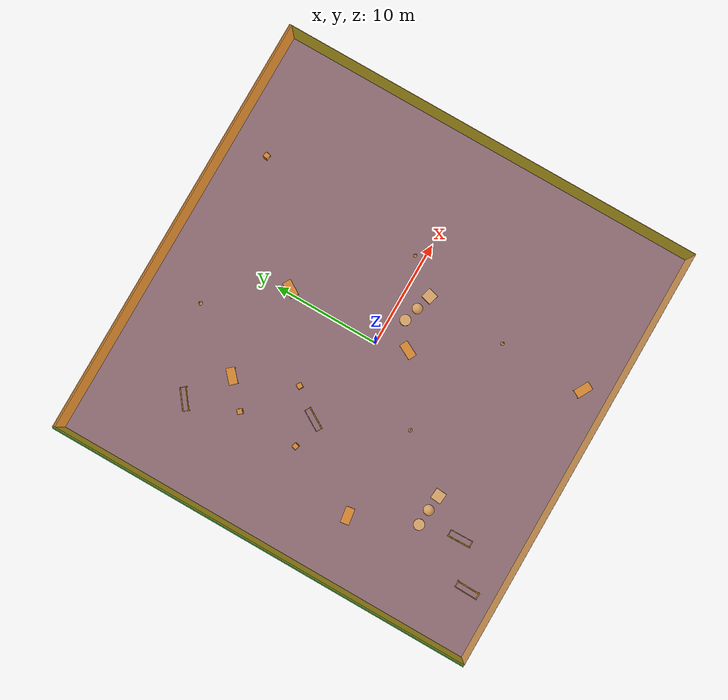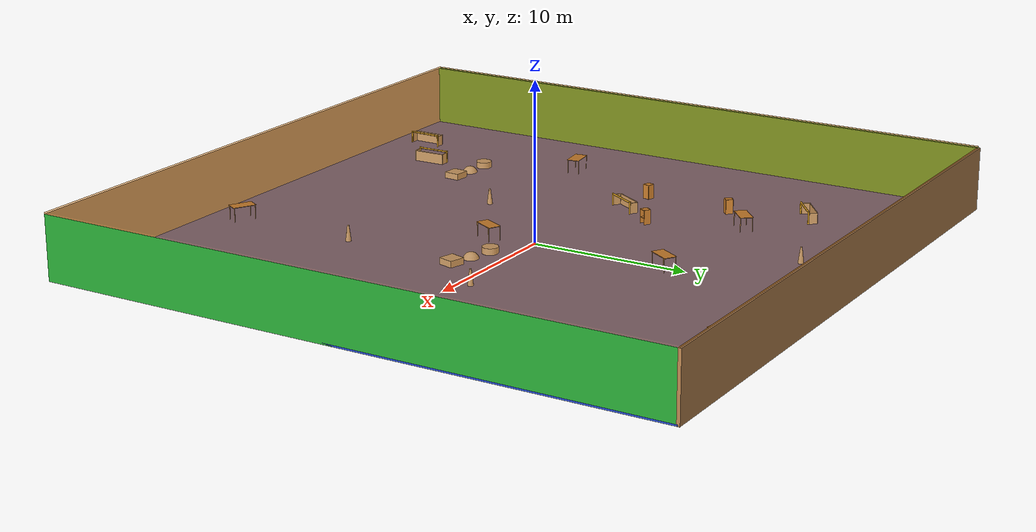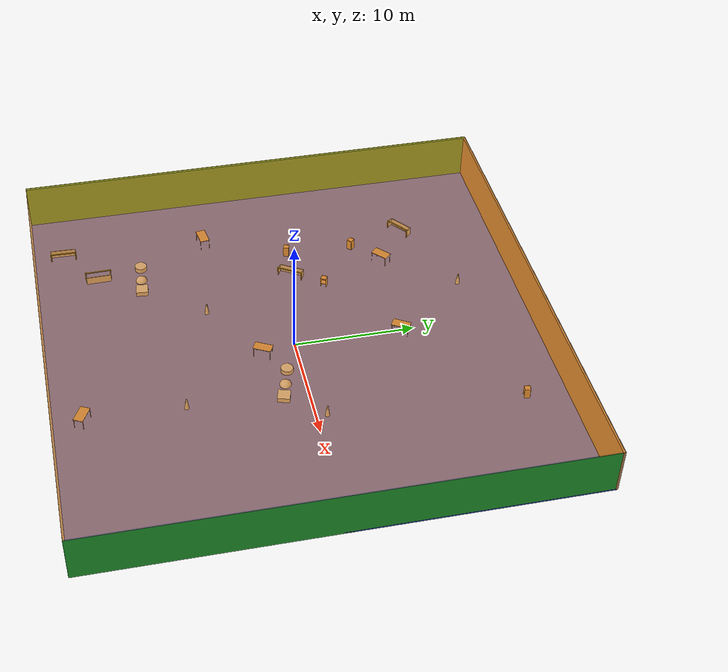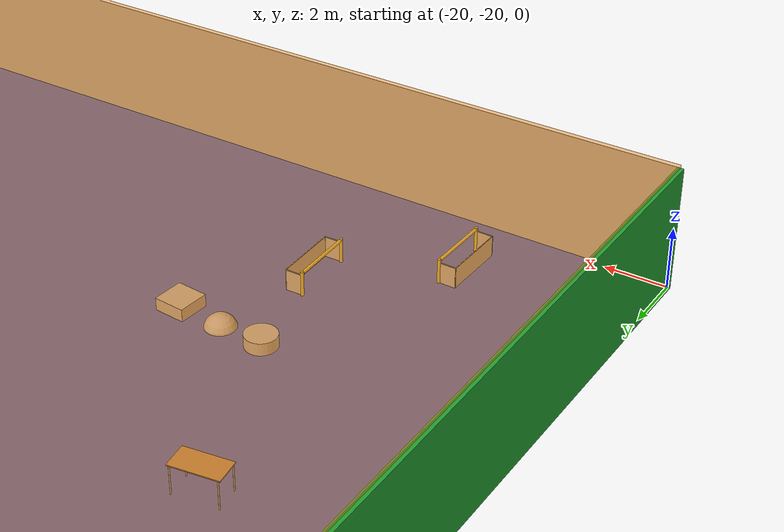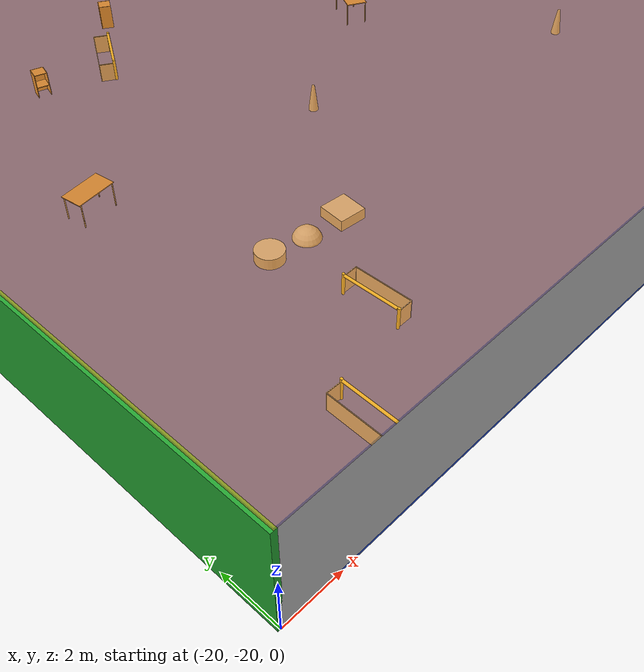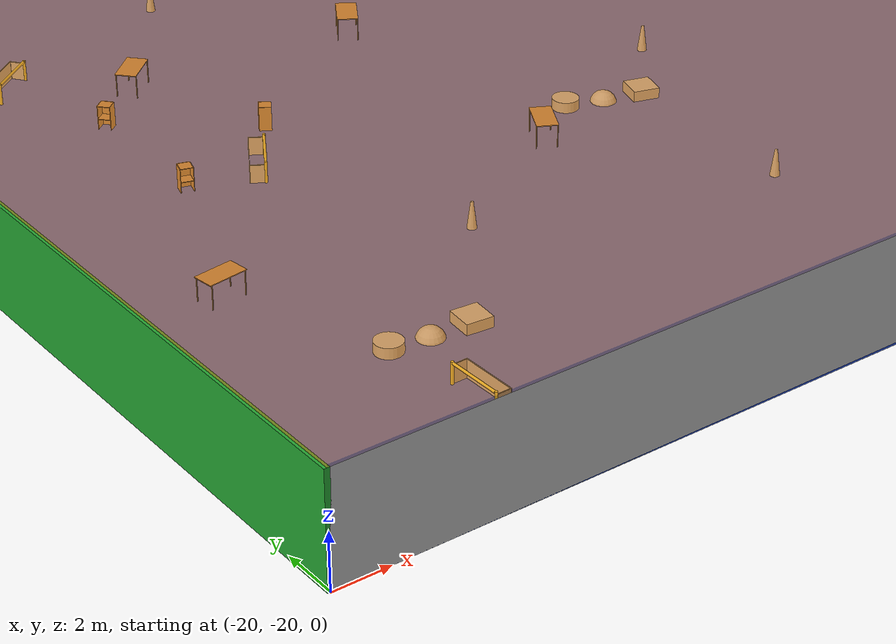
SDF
<sdf version="1.4">
 <world name="default">
  <physics type="ode">
   <max_step_size>0.001</max_step_size>
   <real_time_factor>1</real_time_factor>
   <real_time_update_rate>1000</real_time_update_rate>
   <gravity>0 0 -9.8</gravity>
  </physics>
  <scene><ambient>0.4 0.4 0.4 1</ambient><background>0.7 0.7 0.7 1</background><shadows>1</shadows></scene>
  <model name="Surrounding">
   <static>1</static>
   <link name="Ceiling">
    <collision name="Ceiling_Collision"><geometry><box><size>40 40 0.1</size></box></geometry></collision>
    <visual name="Ceiling_Visual">
     <geometry><box><size>40 40 0.1</size></box></geometry>
     <material>
      <script>
       <uri>file://media/materials/scripts/gazebo.material</uri>
       <name>Gazebo/OrangeTransparent</name>
      </script>
     </material>
    </visual>
    <pose>0 0 4.05 0 0 0</pose>
   </link>
   <link name="Wall_South">
    <collision name="Wall_South_Collision">
     <geometry><box><size>40 0 4</size></box></geometry>
     <pose>0 0 2 0 -0 0</pose>
    </collision>
    <visual name="Wall_South_Visual">
     <pose>0 0 2 0 -0 0</pose>
     <geometry><box><size>40 0 4</size></box></geometry>
     <material>
      <script><uri>file://media/materials/scripts/gazebo.material</uri><name>Gazebo/LightOff</name></script>
     </material>
    </visual>
    <velocity_decay><linear>0</linear><angular>0</angular></velocity_decay>
    <pose>0 -20 0 0 -0 0</pose>
   </link>
   <link name="Wall_East">
    <collision name="Wall_21_Collision">
     <geometry><box><size>40 0 4</size></box></geometry>
     <pose>0 0 2 0 -0 0</pose>
    </collision>
    <visual name="Wall_21_Visual">
     <pose>0 0 2 0 -0 0</pose>
     <geometry><box><size>40 0 4</size></box></geometry>
     <material>
      <script><uri>file://media/materials/scripts/gazebo.material</uri><name>Gazebo/GreenGlow</name></script>
     </material>
    </visual>
    <velocity_decay><linear>0</linear><angular>0</angular></velocity_decay>
    <pose>20 0 0 0 -0 1.5708</pose>
   </link>
   <link name="Wall_North">
    <collision name="Wall_22_Collision">
     <geometry><box><size>40 0.2 4</size></box></geometry>
     <pose>0 0 2 0 -0 0</pose>
    </collision>
    <visual name="Wall_22_Visual">
     <pose>0 0 2 0 -0 0</pose>
     <geometry><box><size>40 0.2 4</size></box></geometry>
     <material>
      <script><uri>file://media/materials/scripts/gazebo.material</uri><name>Gazebo/Wood</name></script>
     </material>
    </visual>
    <velocity_decay><linear>0</linear><angular>0</angular></velocity_decay>
    <pose>0 20 0 0 -0 0</pose>
   </link>
   <link name="Wall_West">
    <collision name="Wall_23_Collision">
     <geometry><box><size>40 0.2 4</size></box></geometry>
     <pose>0 0 2 0 -0 0</pose>
    </collision>
    <visual name="Wall_23_Visual">
     <pose>0 0 2 0 -0 0</pose>
     <geometry><box><size>40 0.2 4</size></box></geometry>
     <material>
      <script><uri>file://media/materials/scripts/gazebo.material</uri><name>Gazebo/GreenGlow</name></script>
     </material>
    </visual>
    <velocity_decay><linear>0</linear><angular>0</angular></velocity_decay>
    <pose>-20 0 0 0 0 -1.5708</pose>
   </link>
   <link name="Ground_link">
    <collision name="collision">
     <pose>0 0 .05 0 -0 0</pose>
     <geometry><box><size>40 40 0.1</size></box></geometry>
    </collision>
    <visual name="visual">
     <pose>0 0 .05 0 -0 0</pose>
     <geometry><box><size>40 40 0.1</size></box></geometry>
     <material>
      <script><uri>file://media/materials/scripts/gazebo.material</uri><name>Gazebo/BlueGlow</name></script>
     </material>
    </visual>
   </link>
   <static>1</static>
  </model>
  <spherical_coordinates>
   <surface_model>EARTH_WGS84</surface_model>
   <latitude_deg>0</latitude_deg>
   <longitude_deg>0</longitude_deg>
   <elevation>0</elevation>
   <heading_deg>0</heading_deg>
  </spherical_coordinates>
  <light name="lightball_0" type="diffuse">
   <diffuse>0.8 0.8 0.8 1</diffuse>
   <specular>0.2 0.2 0.2 1</specular>
   <attenuation>
    <range>100</range>
    <constant>0.7</constant>
    <linear>0.01</linear>
    <quadratic>0.001</quadratic>
   </attenuation>
   <direction>-0.5 0.1 -0.9</direction>
   <pose>14.6313194674 -13.0293971982 1.33509694229 0 0 0</pose>
  </light>
  <light name="lightball_1" type="diffuse">
   <diffuse>0.8 0.8 0.8 1</diffuse>
   <specular>0.2 0.2 0.2 1</specular>
   <attenuation>
    <range>100</range>
    <constant>0.7</constant>
    <linear>0.01</linear>
    <quadratic>0.001</quadratic>
   </attenuation>
   <direction>-0.5 0.1 -0.9</direction>
   <pose>2.33723996227 -13.0188880444 2.14630474847 0 0 0</pose>
  </light>
  <light name="lightball_2" type="diffuse">
   <diffuse>0.8 0.8 0.8 1</diffuse>
   <specular>0.2 0.2 0.2 1</specular>
   <attenuation>
    <range>100</range>
    <constant>0.7</constant>
    <linear>0.01</linear>
    <quadratic>0.001</quadratic>
   </attenuation>
   <direction>-0.5 0.1 -0.9</direction>
   <pose>-7.42288895416 0.284552722506 3.11484104907 0 0 0</pose>
  </light>
  <light name="lightball_3" type="diffuse">
   <diffuse>0.8 0.8 0.8 1</diffuse>
   <specular>0.2 0.2 0.2 1</specular>
   <attenuation>
    <range>100</range>
    <constant>0.7</constant>
    <linear>0.01</linear>
    <quadratic>0.001</quadratic>
   </attenuation>
   <direction>-0.5 0.1 -0.9</direction>
   <pose>-17.4156029891 -9.17108262581 1.31623134506 0 0 0</pose>
  </light>
  <light name="lightball_4" type="diffuse">
   <diffuse>0.8 0.8 0.8 1</diffuse>
   <specular>0.2 0.2 0.2 1</specular>
   <attenuation>
    <range>100</range>
    <constant>0.7</constant>
    <linear>0.01</linear>
    <quadratic>0.001</quadratic>
   </attenuation>
   <direction>-0.5 0.1 -0.9</direction>
   <pose>1.53738797509 -0.936338896374 0.518849311119 0 0 0</pose>
  </light>
  <light name="lightball_5" type="diffuse">
   <diffuse>0.8 0.8 0.8 1</diffuse>
   <specular>0.2 0.2 0.2 1</specular>
   <attenuation>
    <range>100</range>
    <constant>0.7</constant>
    <linear>0.01</linear>
    <quadratic>0.001</quadratic>
   </attenuation>
   <direction>-0.5 0.1 -0.9</direction>
   <pose>-10.0520859052 12.9066117312 1.4795304486 0 0 0</pose>
  </light>
  <light name="lightball_6" type="diffuse">
   <diffuse>0.8 0.8 0.8 1</diffuse>
   <specular>0.2 0.2 0.2 1</specular>
   <attenuation>
    <range>100</range>
    <constant>0.7</constant>
    <linear>0.01</linear>
    <quadratic>0.001</quadratic>
   </attenuation>
   <direction>-0.5 0.1 -0.9</direction>
   <pose>14.0126403304 -14.9652115027 1.10660164065 0 0 0</pose>
  </light>
  <light name="lightball_7" type="diffuse">
   <diffuse>0.8 0.8 0.8 1</diffuse>
   <specular>0.2 0.2 0.2 1</specular>
   <attenuation>
    <range>100</range>
    <constant>0.7</constant>
    <linear>0.01</linear>
    <quadratic>0.001</quadratic>
   </attenuation>
   <direction>-0.5 0.1 -0.9</direction>
   <pose>-7.49840131254 16.8314891557 2.03324843151 0 0 0</pose>
  </light>
  <include>
   <uri>model://robocup_3Dsim_goal</uri>
   <pose>-14.3556248658 -17.5432360323 0 0 0 3.11927078532</pose>
  </include>
  <include><uri>model://table</uri><pose>-14.203626563 -5.36213066736 0 0 0 0.141266237211</pose></include>
  <include>
   <uri>model://robocup_3Dsim_goal</uri>
   <pose>-11.3499488915 -14.8361084373 0 0 0 0.0220759881389</pose>
  </include>
  <include>
   <uri>model://textured_shapes</uri>
   <pose>-10.324283119 -11.2545936133 0 0 0 1.48816251775</pose>
  </include>
  <include><uri>model://cabinet</uri><pose>-11.2908807347 1.55392504559 0 0 0 1.28806728687</pose></include>
  <include><uri>model://cabinet</uri><pose>-11.0957926862 7.27663287259 0 0 0 0.697184768061</pose></include>
  <include>
   <uri>model://robocup_3Dsim_goal</uri>
   <pose>-12.4044793284 11.8212272558 0 0 0 2.22175397567</pose>
  </include>
  <include>
   <uri>model://robocup_3Dsim_goal</uri>
   <pose>-8.27003256853 1.25313933213 0 0 0 2.59724725225</pose>
  </include>
  <include><uri>model://table</uri><pose>-8.77057300341 9.420950441 0 0 0 0.735201303512</pose></include>
  <include>
   <uri>model://construction_cone</uri>
   <pose>-5.09306900164 -6.41701493838 0 0 0 2.29730061053</pose>
  </include>
  <include><uri>model://cabinet</uri><pose>-6.56552845307 3.87539955542 0 0 0 2.5962629449</pose></include>
  <include>
   <uri>model://construction_cone</uri>
   <pose>-4.62380102152 15.1266809213 0 0 0 2.78518150065</pose>
  </include>
  <include><uri>model://table</uri><pose>0.8265665082 -2.7575646192 0 0 0 1.08610209158</pose></include>
  <include><uri>model://table</uri><pose>0.369706470747 8.82477971179 0 0 0 1.01794496811</pose></include>
  <include>
   <uri>model://textured_shapes</uri>
   <pose>4.49197413194 -1.64065422038 0 0 0 1.29561008528</pose>
  </include>
  <include><uri>model://table</uri><pose>5.43341371513 -17.7029193245 0 0 0 2.64292290928</pose></include>
  <include>
   <uri>model://construction_cone</uri>
   <pose>5.53779259205 -9.65070769468 0 0 0 0.429830567075</pose>
  </include>
  <include>
   <uri>model://construction_cone</uri>
   <pose>8.45491786424 0.870772332595 0 0 0 1.37778130962</pose>
  </include>
  <include><uri>model://cabinet</uri><pose>9.52776772305 16.5671764924 0 0 0 1.39297275604</pose></include>
 </world>
</sdf>

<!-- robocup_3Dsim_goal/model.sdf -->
<sdf version="1.5">
  <model name="robocup_3d_goal">
    <static>true</static>
    <link name="left_post">
      <pose>0 1.05 0.45 0 0 0</pose>
      <collision name="collision">
        <geometry>
          <cylinder>
            <radius>0.05</radius>
            <length>0.9</length>
          </cylinder>
        </geometry>
      </collision>
      <visual name="visual">
        <geometry>
          <cylinder>
            <radius>0.05</radius>
            <length>0.9</length>
          </cylinder>
        </geometry>
        <material>
          <script>
            <uri>file://media/materials/scripts/gazebo.material</uri>
            <name>Gazebo/ZincYellow</name>
          </script>
        </material>
      </visual>
    </link>
    <link name="left_support_horiz_lower">
      <pose>0.30 1.05 0.01 0 0 0</pose>
      <collision name="collision">
        <geometry>
          <box>
            <size>0.50 0.02 0.02</size>
          </box>
        </geometry>
      </collision>
      <visual name="visual">
        <geometry>
          <box>
            <size>0.50 0.02 0.02</size>
          </box>
        </geometry>
        <material>
          <script>
            <uri>file://media/materials/scripts/gazebo.material</uri>
            <name>Gazebo/White</name>
          </script>
        </material>
      </visual>
    </link>
    <link name="left_support_horiz_upper">
      <pose>0.30 1.05 0.79 0 0 0</pose>
      <collision name="collision">
        <geometry>
          <box>
            <size>0.50 0.02 0.02</size>
          </box>
        </geometry>
      </collision>
      <visual name="visual">
        <geometry>
          <box>
            <size>0.50 0.02 0.02</size>
          </box>
        </geometry>
        <material>
          <script>
            <uri>file://media/materials/scripts/gazebo.material</uri>
            <name>Gazebo/White</name>
          </script>
        </material>
      </visual>
    </link>
    <link name="left_support_vertical">
      <pose>0.56 1.05 0.4 0 1.5708 0</pose>
      <collision name="collision">
        <geometry>
          <box>
            <size>0.80 0.02 0.02</size>
          </box>
        </geometry>
      </collision>
      <visual name="visual">
        <geometry>
          <box>
            <size>0.80 0.02 0.02</size>
          </box>
        </geometry>
        <material>
          <script>
            <uri>file://media/materials/scripts/gazebo.material</uri>
            <name>Gazebo/White</name>
          </script>
        </material>
      </visual>
    </link>
    <link name="right_support_horiz_lower">
      <pose>0.30 -1.05 0.01 0 0 0</pose>
      <collision name="collision">
        <geometry>
          <box>
            <size>0.50 0.02 0.02</size>
          </box>
        </geometry>
      </collision>
      <visual name="visual">
        <geometry>
          <box>
            <size>0.50 0.02 0.02</size>
          </box>
        </geometry>
        <material>
          <script>
            <uri>file://media/materials/scripts/gazebo.material</uri>
            <name>Gazebo/White</name>
          </script>
        </material>
      </visual>
    </link>
    <link name="right_support_horiz_upper">
      <pose>0.30 -1.05 0.79 0 0 0</pose>
      <collision name="collision">
        <geometry>
          <box>
            <size>0.50 0.02 0.02</size>
          </box>
        </geometry>
      </collision>
      <visual name="visual">
        <geometry>
          <box>
            <size>0.50 0.02 0.02</size>
          </box>
        </geometry>
        <material>
          <script>
            <uri>file://media/materials/scripts/gazebo.material</uri>
            <name>Gazebo/White</name>
          </script>
        </material>
      </visual>
    </link>
    <link name="right_support_vertical">
      <pose>0.56 -1.05 0.4 0 1.5708 0</pose>
      <collision name="collision">
        <geometry>
          <box>
            <size>0.80 0.02 0.02</size>
          </box>
        </geometry>
      </collision>
      <visual name="visual">
        <geometry>
          <box>
            <size>0.80 0.02 0.02</size>
          </box>
        </geometry>
        <material>
          <script>
            <uri>file://media/materials/scripts/gazebo.material</uri>
            <name>Gazebo/White</name>
          </script>
        </material>
      </visual>
    </link>
    <link name="center_support_horiz_lower">
      <pose>0.56 0 0.01 0 1.5708 0</pose>
      <collision name="collision">
        <geometry>
          <box>
            <size>0.02 2.08 0.02</size>
          </box>
        </geometry>
      </collision>
      <visual name="visual">
        <geometry>
          <box>
            <size>0.02 2.08 0.02</size>
          </box>
        </geometry>
        <material>
          <script>
            <uri>file://media/materials/scripts/gazebo.material</uri>
            <name>Gazebo/White</name>
          </script>
        </material>
      </visual>
    </link>
    <link name="center_support_horiz_upper">
      <pose>0.56 0 0.79 0 1.5708 0</pose>
      <collision name="collision">
        <geometry>
          <box>
            <size>0.02 2.08 0.02</size>
          </box>
        </geometry>
      </collision>
      <visual name="visual">
        <geometry>
          <box>
            <size>0.02 2.08 0.02</size>
          </box>
        </geometry>
        <material>
          <script>
            <uri>file://media/materials/scripts/gazebo.material</uri>
            <name>Gazebo/White</name>
          </script>
        </material>
      </visual>
    </link>
    <link name="right_post">
      <pose>0 -1.05 0.45 0 0 0</pose>
      <collision name="collision">
        <geometry>
          <cylinder>
            <radius>0.05</radius>
            <length>0.9</length>
          </cylinder>
        </geometry>
      </collision>
      <visual name="visual">
        <geometry>
          <cylinder>
            <radius>0.05</radius>
            <length>0.9</length>
          </cylinder>
        </geometry>
        <material>
          <script>
            <uri>file://media/materials/scripts/gazebo.material</uri>
            <name>Gazebo/ZincYellow</name>
          </script>
        </material>
      </visual>
    </link>
    <link name="crossbar">
      <pose>0 0 0.85 1.57 1.57 0</pose>
      <collision name="collision">
        <geometry>
          <cylinder>
            <radius>0.05</radius>
            <length>2.0</length>
          </cylinder>
        </geometry>
      </collision>
      <visual name="visual">
        <geometry>
          <cylinder>
            <radius>0.05</radius>
            <length>2.0</length>
          </cylinder>
        </geometry>
        <material>
          <script>
            <uri>file://media/materials/scripts/gazebo.material</uri>
            <name>Gazebo/ZincYellow</name>
          </script>
        </material>
      </visual>
    </link>
    <link name="center_net">
      <pose>0.56 0 0.40 0 0 0</pose>
      <collision name="collision">
        <geometry>
          <box>
            <size>0.01 2.1 0.80</size>
          </box>
        </geometry>
      </collision>
      <visual name="visual">
        <geometry>
          <box>
            <size>0.01 2.1 0.80</size>
          </box>
        </geometry>
        <material>
          <script>
            <uri>model://../model_source/models/robocup09_spl_field/materials/scripts/</uri>
            <uri>model://../model_source/models/robocup09_spl_field/materials/textures/</uri>
            <name>RoboCup/Net</name>
          </script>
        </material>
      </visual>
    </link>
    <link name="left_net">
      <pose>0.30 1.05 0.40 0 0 0</pose>
      <collision name="collision">
        <geometry>
          <box>
            <size>0.50 0.01 0.76</size>
          </box>
        </geometry>
      </collision>
      <visual name="visual">
        <geometry>
          <box>
            <size>0.50 0.01 0.76</size>
          </box>
        </geometry>
        <material>
          <script>
            <uri>model://../model_source/models/robocup09_spl_field/materials/scripts/</uri>
            <uri>model://../model_source/models/robocup09_spl_field/materials/textures/</uri>
            <name>RoboCup/Net</name>
          </script>
        </material>
      </visual>
    </link>
    <link name="right_net">
      <pose>0.30 -1.05 0.40 0 0 0</pose>
      <collision name="collision">
        <geometry>
          <box>
            <size>0.50 0.01 0.76</size>
          </box>
        </geometry>
      </collision>
      <visual name="visual">
        <geometry>
          <box>
            <size>0.50 0.01 0.76</size>
          </box>
        </geometry>
        <material>
          <script>
            <uri>model://../model_source/models/robocup09_spl_field/materials/scripts/</uri>
            <uri>model://../model_source/models/robocup09_spl_field/materials/textures/</uri>
            <name>RoboCup/Net</name>
          </script>
        </material>
      </visual>
    </link>
  </model>
</sdf>

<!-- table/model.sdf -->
<sdf version="1.5">
  <model name="table">
    <static>true</static>
    <link name="link">
      <collision name="surface">
        <pose>0 0 1.0 0 0 0</pose>
        <geometry>
          <box>
            <size>1.5 0.8 0.03</size>
          </box>
        </geometry>
        <surface>
          <friction>
            <ode>
              <mu>0.6</mu>
              <mu2>0.6</mu2>
            </ode>
          </friction>
        </surface>
      </collision>
      <visual name="visual1">
        <pose>0 0 1.0 0 0 0</pose>
        <geometry>
          <box>
            <size>1.5 0.8 0.03</size>
          </box>
        </geometry>
        <material>
          <script>
            <uri>model://media/materials/scripts/gazebo.material</uri>
            <name>Gazebo/Wood</name>
          </script>
        </material>
      </visual>
      <collision name="front_left_leg">
        <pose>0.68 0.38 0.5 0 0 0</pose>
        <geometry>
          <cylinder>
            <radius>0.02</radius>
            <length>1.0</length>
          </cylinder>
        </geometry>
      </collision>
      <visual name="front_left_leg">
        <pose>0.68 0.38 0.5 0 0 0</pose>
        <geometry>
          <cylinder>
            <radius>0.02</radius>
            <length>1.0</length>
          </cylinder>
        </geometry>
        <material>
          <script>
            <uri>model://media/materials/scripts/gazebo.material</uri>
            <name>Gazebo/Grey</name>
          </script>
        </material>
      </visual>
      <collision name="front_right_leg">
        <pose>0.68 -0.38 0.5 0 0 0</pose>
        <geometry>
          <cylinder>
            <radius>0.02</radius>
            <length>1.0</length>
          </cylinder>
        </geometry>
      </collision>
      <visual name="front_right_leg">
        <pose>0.68 -0.38 0.5 0 0 0</pose>
        <geometry>
          <cylinder>
            <radius>0.02</radius>
            <length>1.0</length>
          </cylinder>
        </geometry>
        <material>
          <script>
            <uri>model://media/materials/scripts/gazebo.material</uri>
            <name>Gazebo/Grey</name>
          </script>
        </material>
      </visual>
      <collision name="back_right_leg">
        <pose>-0.68 -0.38 0.5 0 0 0</pose>
        <geometry>
          <cylinder>
            <radius>0.02</radius>
            <length>1.0</length>
          </cylinder>
        </geometry>
      </collision>
      <visual name="back_right_leg">
        <pose>-0.68 -0.38 0.5 0 0 0</pose>
        <geometry>
          <cylinder>
            <radius>0.02</radius>
            <length>1.0</length>
          </cylinder>
        </geometry>
        <material>
          <script>
            <uri>model://media/materials/scripts/gazebo.material</uri>
            <name>Gazebo/Grey</name>
          </script>
        </material>
      </visual>
      <collision name="back_left_leg">
        <pose>-0.68 0.38 0.5 0 0 0</pose>
        <geometry>
          <cylinder>
            <radius>0.02</radius>
            <length>1.0</length>
          </cylinder>
        </geometry>
      </collision>
      <visual name="back_left_leg">
        <pose>-0.68 0.38 0.5 0 0 0</pose>
        <geometry>
          <cylinder>
            <radius>0.02</radius>
            <length>1.0</length>
          </cylinder>
        </geometry>
        <material>
          <script>
            <uri>model://media/materials/scripts/gazebo.material</uri>
            <name>Gazebo/Grey</name>
          </script>
        </material>
      </visual>
    </link>
  </model>
</sdf>

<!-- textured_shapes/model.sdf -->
<sdf version="1.6">
  <model name="textured_shapes">
    <pose>0 0 0.5 0 0 0</pose>
    <link name="box">
      <pose>0 -1.5 0 0 0 0</pose>
      <collision name="collision">
        <geometry>
          <box>
            <size>1 1 1</size>
          </box>
        </geometry>
      </collision>
      <visual name="visual">
        <geometry>
          <box>
            <size>1 1 1</size>
          </box>
        </geometry>
        <material>
          <script>
            <uri>model://../model_source/models/textured_shapes/materials/scripts</uri>
            <uri>model://../model_source/models/textured_shapes/materials/textures</uri>
            <name>TexturedShape/Squares</name>
          </script>
        </material>
      </visual>
    </link>
    <link name="sphere">
      <collision name="collision">
        <geometry>
          <sphere>
            <radius>0.5</radius>
          </sphere>
        </geometry>
      </collision>
      <visual name="visual">
        <geometry>
          <sphere>
            <radius>0.5</radius>
          </sphere>
        </geometry>
        <material>
          <script>
            <uri>model://../model_source/models/textured_shapes/materials/scripts</uri>
            <uri>model://../model_source/models/textured_shapes/materials/textures</uri>
            <name>TexturedShape/Squares</name>
          </script>
        </material>
      </visual>
    </link>
    <link name="cylinder">
      <pose>0 1.5 0 0 0 0</pose>
      <collision name="collision">
        <geometry>
          <cylinder>
            <radius>0.5</radius>
            <length>1</length>
          </cylinder>
        </geometry>
      </collision>
      <visual name="visual">
        <geometry>
          <cylinder>
            <radius>0.5</radius>
            <length>1</length>
          </cylinder>
        </geometry>
        <material>
          <script>
            <uri>model://../model_source/models/textured_shapes/materials/scripts</uri>
            <uri>model://../model_source/models/textured_shapes/materials/textures</uri>
            <name>TexturedShape/Squares</name>
          </script>
        </material>
      </visual>
    </link>
  </model>
</sdf>

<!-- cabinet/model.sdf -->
<sdf version="1.5">
  <model name="cabinet">
    <static>true</static>
    <link name="cabinet_bottom_plate">
      <inertial>
        <pose>0 0 -1 0 0 0</pose>
        <inertia>
          <ixx>2.050000</ixx>
          <ixy>0</ixy>
          <ixz>0</ixz>
          <iyy>2.050000</iyy>
          <iyz>0</iyz>
          <izz>2.050000</izz>
        </inertia>
        <mass>25.000000</mass>
      </inertial>
      <collision name="cabinet_bottom_plate_geom">
        <pose>0 0 0.010000 0 0 0</pose>
        <geometry>
          <box>
            <size>0.450000 0.450000 0.020000</size>
          </box>
        </geometry>
      </collision>
      <visual name="cabinet_bottom_plate_geom_visual">
        <pose>0 0 0.010000 0 0 0</pose>
        <geometry>
          <box>
            <size>0.450000 0.450000 0.020000</size>
          </box>
        </geometry>
        <material>
          <script>
            <uri>model://media/materials/scripts/gazebo.material</uri>
            <name>Gazebo/Wood</name>
          </script>
        </material>
      </visual>
      <collision name="cabinet_bottom_plate_geom_cabinet_back_plate">
        <pose>0.235000 0 0.510000 0 0 0</pose>
        <geometry>
          <box>
            <size>0.020000 0.450000 1.020000</size>
          </box>
        </geometry>
      </collision>
      <visual name="cabinet_bottom_plate_geom_cabinet_back_plate_visual">
        <pose>0.235000 0 0.510000 0 0 0</pose>
        <geometry>
          <box>
            <size>0.020000 0.450000 1.020000</size>
          </box>
        </geometry>
        <material>
          <script>
            <uri>model://media/materials/scripts/gazebo.material</uri>
            <name>Gazebo/Wood</name>
          </script>
        </material>
      </visual>
      <collision name="cabinet_bottom_plate_geom_cabinet_left_plate">
        <pose>0 0.235000 0.510000 0 0 0</pose>
        <geometry>
          <box>
            <size>0.450000 0.020000 1.020000</size>
          </box>
        </geometry>
      </collision>
      <visual name="cabinet_bottom_plate_geom_cabinet_left_plate_visual">
        <pose>0 0.235000 0.510000 0 0 0</pose>
        <geometry>
          <box>
            <size>0.450000 0.020000 1.020000</size>
          </box>
        </geometry>
        <material>
          <script>
            <uri>model://media/materials/scripts/gazebo.material</uri>
            <name>Gazebo/Wood</name>
          </script>
        </material>
      </visual>
      <collision name="cabinet_bottom_plate_geom_cabinet_middle_plate">
        <pose>0 0 0.510000 0 0 0</pose>
        <geometry>
          <box>
            <size>0.450000 0.450000 0.020000</size>
          </box>
        </geometry>
      </collision>
      <visual name="cabinet_bottom_plate_geom_cabinet_middle_plate_visual">
        <pose>0 0 0.510000 0 0 0</pose>
        <geometry>
          <box>
            <size>0.450000 0.450000 0.020000</size>
          </box>
        </geometry>
        <material>
          <script>
            <uri>model://media/materials/scripts/gazebo.material</uri>
            <name>Gazebo/Wood</name>
          </script>
        </material>
      </visual>
      <collision name="cabinet_bottom_plate_geom_cabinet_right_plate">
        <pose>0 -0.235000 0.510000 0 0 0</pose>
        <geometry>
          <box>
            <size>0.450000 0.020000 1.020000</size>
          </box>
        </geometry>
      </collision>
      <visual name="cabinet_bottom_plate_geom_cabinet_right_plate_visual">
        <pose>0 -0.235000 0.510000 0 0 0</pose>
        <geometry>
          <box>
            <size>0.450000 0.020000 1.020000</size>
          </box>
        </geometry>
        <material>
          <script>
            <uri>model://media/materials/scripts/gazebo.material</uri>
            <name>Gazebo/Wood</name>
          </script>
        </material>
      </visual>
      <collision name="cabinet_bottom_plate_geom_cabinet_top_plate">
        <pose>0 0 1.010000 0 0 0</pose>
        <geometry>
          <box>
            <size>0.450000 0.450000 0.020000</size>
          </box>
        </geometry>
      </collision>
      <visual name="cabinet_bottom_plate_geom_cabinet_top_plate_visual">
        <pose>0 0 1.010000 0 0 0</pose>
        <geometry>
          <box>
            <size>0.450000 0.450000 0.020000</size>
          </box>
        </geometry>
        <material>
          <script>
            <uri>model://media/materials/scripts/gazebo.material</uri>
            <name>Gazebo/Wood</name>
          </script>
        </material>
      </visual>
    </link>
  </model>
</sdf>

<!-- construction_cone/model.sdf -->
<sdf version="1.5">
  <model name="Construction Cone">
    <link name="link">
      <collision name="collision">
        <geometry>
          <mesh>
            <scale>10 10 10</scale>
            <uri>file://isr-testbed/construction_cone/meshes/construction_cone.dae</uri>
          </mesh>
        </geometry>
      </collision>
      <visual name="visual">
        <geometry>
          <mesh>
            <scale>10 10 10</scale>
            <uri>file://isr-testbed/construction_cone/meshes/construction_cone.dae</uri>
          </mesh>
        </geometry>
      </visual>
    </link>
  </model>
</sdf>
